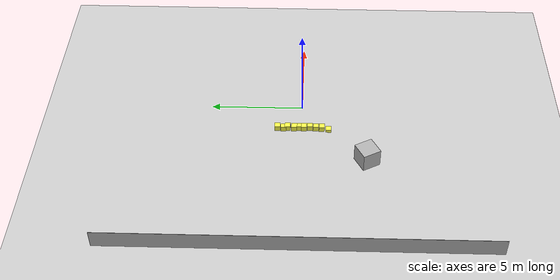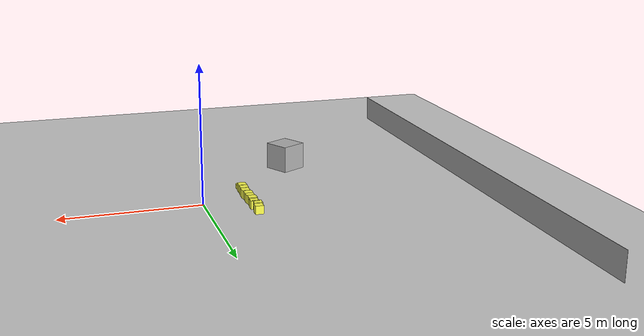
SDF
<sdf version="1.10">
 <world name="default">
  <model name="ground_plane">
   <static>true</static>
   <link name="link">
    <collision name="collision">
     <geometry><plane><normal>0 0 1</normal><size>1 1</size></plane></geometry>
    </collision>
    <visual name="visual">
     <geometry><plane><normal>0 0 1</normal><size>100 100</size></plane></geometry>
     <material>
      <ambient>0.800000012 0.800000012 0.800000012 1</ambient>
      <diffuse>0.800000012 0.800000012 0.800000012 1</diffuse>
      <specular>0.800000012 0.800000012 0.800000012 1</specular>
     </material>
    </visual>
    <inertial>
     <mass>1</mass>
     <inertia><ixx>1</ixx><ixy>0</ixy><ixz>0</ixz><iyy>1</iyy><iyz>0</iyz><izz>1</izz></inertia>
    </inertial>
   </link>
  </model>
  <model name="wall_1">
   <pose>-10 0 .5 0 0 -1.57</pose>
   <static>true</static>
   <link name="link">
    <collision name="collision"><geometry><box><size>20 .01 1</size></box></geometry></collision>
    <visual name="visual">
     <geometry><box><size>20 .01 1</size></box></geometry>
     <material>
      <ambient>0.7 0.7 0.7 1</ambient>
      <diffuse>0.7 0.7 0.7 1</diffuse>
      <specular>0.7 0.7 0.7 1</specular>
     </material>
    </visual>
    <inertial>
     <mass>1</mass>
     <inertia><ixx>1</ixx><ixy>0</ixy><ixz>0</ixz><iyy>1</iyy><iyz>0</iyz><izz>1</izz></inertia>
    </inertial>
   </link>
  </model>
  <model name="cube_1">
   <pose>-4 -3.5 .5 0 0 .5</pose>
   <static>true</static>
   <link name="link">
    <collision name="collision"><geometry><box><size>1 1 1</size></box></geometry></collision>
    <visual name="visual">
     <geometry><box><size>1 1 1</size></box></geometry>
     <material>
      <ambient>0.7 0.7 0.7 1</ambient>
      <diffuse>0.7 0.7 0.7 1</diffuse>
      <specular>0.7 0.7 0.7 1</specular>
     </material>
    </visual>
    <inertial>
     <mass>1</mass>
     <inertia><ixx>1</ixx><ixy>0</ixy><ixz>0</ixz><iyy>1</iyy><iyz>0</iyz><izz>1</izz></inertia>
    </inertial>
   </link>
  </model>
  <model name="Box_Yellow">
   <link name="link_0">
    <inertial>
     <mass>1</mass>
     <inertia>
      <ixx>0.166667</ixx>
      <ixy>0</ixy>
      <ixz>0</ixz>
      <iyy>0.166667</iyy>
      <iyz>0</iyz>
      <izz>0.166667</izz>
     </inertia>
    </inertial>
    <visual name="visual">
     <geometry><box><size>0.3 0.3 0.3</size></box></geometry>
     <material>
      <lighting>1</lighting>
      <script><uri>file://media/materials/scripts/gazebo.material</uri><name>Gazebo/Grey</name></script>
      <ambient>1 1 0.3 1</ambient>
      <diffuse>0.7 0.7 0.7 1</diffuse>
      <specular>0.01 0.01 0.01 1</specular>
      <emissive>0 0 0 1</emissive>
      <shader type="vertex"><normal_map>__default__</normal_map></shader>
     </material>
    </visual>
    <collision name="collision">
     <geometry><box><size>0.3 0.3 0.3</size></box></geometry>
     <surface>
      <friction>
       <ode><mu>1</mu><mu2>1</mu2><fdir1>0 0 0</fdir1><slip1>0</slip1><slip2>0</slip2></ode>
       <torsional>
        <coefficient>1</coefficient>
        <patch_radius>0</patch_radius>
        <surface_radius>0</surface_radius>
        <use_patch_radius>1</use_patch_radius>
        <ode><slip>0</slip></ode>
       </torsional>
      </friction>
      <bounce><restitution_coefficient>0</restitution_coefficient><threshold>1e+06</threshold></bounce>
      <contact>
       <collide_without_contact>0</collide_without_contact>
       <collide_without_contact_bitmask>1</collide_without_contact_bitmask>
       <collide_bitmask>1</collide_bitmask>
       <ode>
        <soft_cfm>0</soft_cfm>
        <soft_erp>0.2</soft_erp>
        <kp>1e+13</kp>
        <kd>1</kd>
        <max_vel>0.01</max_vel>
        <min_depth>0</min_depth>
       </ode>
       <bullet>
        <split_impulse>1</split_impulse>
        <split_impulse_penetration_threshold>-0.01</split_impulse_penetration_threshold>
        <soft_cfm>0</soft_cfm>
        <soft_erp>0.2</soft_erp>
        <kp>1e+13</kp>
        <kd>1</kd>
       </bullet>
      </contact>
     </surface>
    </collision>
   </link>
   <static>0</static>
   <pose>-1.69644 -1.47229 0 0 -0 0</pose>
  </model>
  <model name="Box_Yellow_clone">
   <link name="link_0">
    <inertial>
     <mass>1</mass>
     <inertia>
      <ixx>0.166667</ixx>
      <ixy>0</ixy>
      <ixz>0</ixz>
      <iyy>0.166667</iyy>
      <iyz>0</iyz>
      <izz>0.166667</izz>
     </inertia>
    </inertial>
    <visual name="visual">
     <geometry><box><size>0.3 0.3 0.3</size></box></geometry>
     <material>
      <lighting>1</lighting>
      <script><uri>file://media/materials/scripts/gazebo.material</uri><name>Gazebo/Grey</name></script>
      <ambient>1 1 0.3 1</ambient>
      <diffuse>0.7 0.7 0.7 1</diffuse>
      <specular>0.01 0.01 0.01 1</specular>
      <emissive>0 0 0 1</emissive>
      <shader type="vertex"><normal_map>__default__</normal_map></shader>
     </material>
    </visual>
    <collision name="collision">
     <geometry><box><size>0.3 0.3 0.3</size></box></geometry>
     <surface>
      <friction>
       <ode><mu>1</mu><mu2>1</mu2><fdir1>0 0 0</fdir1><slip1>0</slip1><slip2>0</slip2></ode>
       <torsional>
        <coefficient>1</coefficient>
        <patch_radius>0</patch_radius>
        <surface_radius>0</surface_radius>
        <use_patch_radius>1</use_patch_radius>
        <ode><slip>0</slip></ode>
       </torsional>
      </friction>
      <bounce><restitution_coefficient>0</restitution_coefficient><threshold>1e+06</threshold></bounce>
      <contact>
       <collide_without_contact>0</collide_without_contact>
       <collide_without_contact_bitmask>1</collide_without_contact_bitmask>
       <collide_bitmask>1</collide_bitmask>
       <ode>
        <soft_cfm>0</soft_cfm>
        <soft_erp>0.2</soft_erp>
        <kp>1e+13</kp>
        <kd>1</kd>
        <max_vel>0.01</max_vel>
        <min_depth>0</min_depth>
       </ode>
       <bullet>
        <split_impulse>1</split_impulse>
        <split_impulse_penetration_threshold>-0.01</split_impulse_penetration_threshold>
        <soft_cfm>0</soft_cfm>
        <soft_erp>0.2</soft_erp>
        <kp>1e+13</kp>
        <kd>1</kd>
       </bullet>
      </contact>
     </surface>
    </collision>
   </link>
   <static>0</static>
   <pose>-1.66017 -1.09947 0.15 0 0 -1e-06</pose>
  </model>
  <model name="Box_Yellow_clone_0">
   <link name="link_0">
    <inertial>
     <mass>1</mass>
     <inertia>
      <ixx>0.166667</ixx>
      <ixy>0</ixy>
      <ixz>0</ixz>
      <iyy>0.166667</iyy>
      <iyz>0</iyz>
      <izz>0.166667</izz>
     </inertia>
    </inertial>
    <visual name="visual">
     <geometry><box><size>0.3 0.3 0.3</size></box></geometry>
     <material>
      <lighting>1</lighting>
      <script><uri>file://media/materials/scripts/gazebo.material</uri><name>Gazebo/Grey</name></script>
      <ambient>1 1 0.3 1</ambient>
      <diffuse>0.7 0.7 0.7 1</diffuse>
      <specular>0.01 0.01 0.01 1</specular>
      <emissive>0 0 0 1</emissive>
      <shader type="vertex"><normal_map>__default__</normal_map></shader>
     </material>
    </visual>
    <collision name="collision">
     <geometry><box><size>0.3 0.3 0.3</size></box></geometry>
     <surface>
      <friction>
       <ode><mu>1</mu><mu2>1</mu2><fdir1>0 0 0</fdir1><slip1>0</slip1><slip2>0</slip2></ode>
       <torsional>
        <coefficient>1</coefficient>
        <patch_radius>0</patch_radius>
        <surface_radius>0</surface_radius>
        <use_patch_radius>1</use_patch_radius>
        <ode><slip>0</slip></ode>
       </torsional>
      </friction>
      <bounce><restitution_coefficient>0</restitution_coefficient><threshold>1e+06</threshold></bounce>
      <contact>
       <collide_without_contact>0</collide_without_contact>
       <collide_without_contact_bitmask>1</collide_without_contact_bitmask>
       <collide_bitmask>1</collide_bitmask>
       <ode>
        <soft_cfm>0</soft_cfm>
        <soft_erp>0.2</soft_erp>
        <kp>1e+13</kp>
        <kd>1</kd>
        <max_vel>0.01</max_vel>
        <min_depth>0</min_depth>
       </ode>
       <bullet>
        <split_impulse>1</split_impulse>
        <split_impulse_penetration_threshold>-0.01</split_impulse_penetration_threshold>
        <soft_cfm>0</soft_cfm>
        <soft_erp>0.2</soft_erp>
        <kp>1e+13</kp>
        <kd>1</kd>
       </bullet>
      </contact>
     </surface>
    </collision>
   </link>
   <static>0</static>
   <pose>-1.64792 -0.772988 0.15 0 0 -1e-06</pose>
  </model>
  <model name="Box_Yellow_clone_1">
   <link name="link_0">
    <inertial>
     <mass>1</mass>
     <inertia>
      <ixx>0.166667</ixx>
      <ixy>0</ixy>
      <ixz>0</ixz>
      <iyy>0.166667</iyy>
      <iyz>0</iyz>
      <izz>0.166667</izz>
     </inertia>
    </inertial>
    <visual name="visual">
     <geometry><box><size>0.3 0.3 0.3</size></box></geometry>
     <material>
      <lighting>1</lighting>
      <script><uri>file://media/materials/scripts/gazebo.material</uri><name>Gazebo/Grey</name></script>
      <ambient>1 1 0.3 1</ambient>
      <diffuse>0.7 0.7 0.7 1</diffuse>
      <specular>0.01 0.01 0.01 1</specular>
      <emissive>0 0 0 1</emissive>
      <shader type="vertex"><normal_map>__default__</normal_map></shader>
     </material>
    </visual>
    <collision name="collision">
     <geometry><box><size>0.3 0.3 0.3</size></box></geometry>
     <surface>
      <friction>
       <ode><mu>1</mu><mu2>1</mu2><fdir1>0 0 0</fdir1><slip1>0</slip1><slip2>0</slip2></ode>
       <torsional>
        <coefficient>1</coefficient>
        <patch_radius>0</patch_radius>
        <surface_radius>0</surface_radius>
        <use_patch_radius>1</use_patch_radius>
        <ode><slip>0</slip></ode>
       </torsional>
      </friction>
      <bounce><restitution_coefficient>0</restitution_coefficient><threshold>1e+06</threshold></bounce>
      <contact>
       <collide_without_contact>0</collide_without_contact>
       <collide_without_contact_bitmask>1</collide_without_contact_bitmask>
       <collide_bitmask>1</collide_bitmask>
       <ode>
        <soft_cfm>0</soft_cfm>
        <soft_erp>0.2</soft_erp>
        <kp>1e+13</kp>
        <kd>1</kd>
        <max_vel>0.01</max_vel>
        <min_depth>0</min_depth>
       </ode>
       <bullet>
        <split_impulse>1</split_impulse>
        <split_impulse_penetration_threshold>-0.01</split_impulse_penetration_threshold>
        <soft_cfm>0</soft_cfm>
        <soft_erp>0.2</soft_erp>
        <kp>1e+13</kp>
        <kd>1</kd>
       </bullet>
      </contact>
     </surface>
    </collision>
   </link>
   <static>0</static>
   <pose>-1.62011 -0.460472 0.15 0 0 -1e-06</pose>
  </model>
  <model name="Box_Yellow_clone_2">
   <link name="link_0">
    <inertial>
     <mass>1</mass>
     <inertia>
      <ixx>0.166667</ixx>
      <ixy>0</ixy>
      <ixz>0</ixz>
      <iyy>0.166667</iyy>
      <iyz>0</iyz>
      <izz>0.166667</izz>
     </inertia>
    </inertial>
    <visual name="visual">
     <geometry><box><size>0.3 0.3 0.3</size></box></geometry>
     <material>
      <lighting>1</lighting>
      <script><uri>file://media/materials/scripts/gazebo.material</uri><name>Gazebo/Grey</name></script>
      <ambient>1 1 0.3 1</ambient>
      <diffuse>0.7 0.7 0.7 1</diffuse>
      <specular>0.01 0.01 0.01 1</specular>
      <emissive>0 0 0 1</emissive>
      <shader type="vertex"><normal_map>__default__</normal_map></shader>
     </material>
    </visual>
    <collision name="collision">
     <geometry><box><size>0.3 0.3 0.3</size></box></geometry>
     <surface>
      <friction>
       <ode><mu>1</mu><mu2>1</mu2><fdir1>0 0 0</fdir1><slip1>0</slip1><slip2>0</slip2></ode>
       <torsional>
        <coefficient>1</coefficient>
        <patch_radius>0</patch_radius>
        <surface_radius>0</surface_radius>
        <use_patch_radius>1</use_patch_radius>
        <ode><slip>0</slip></ode>
       </torsional>
      </friction>
      <bounce><restitution_coefficient>0</restitution_coefficient><threshold>1e+06</threshold></bounce>
      <contact>
       <collide_without_contact>0</collide_without_contact>
       <collide_without_contact_bitmask>1</collide_without_contact_bitmask>
       <collide_bitmask>1</collide_bitmask>
       <ode>
        <soft_cfm>0</soft_cfm>
        <soft_erp>0.2</soft_erp>
        <kp>1e+13</kp>
        <kd>1</kd>
        <max_vel>0.01</max_vel>
        <min_depth>0</min_depth>
       </ode>
       <bullet>
        <split_impulse>1</split_impulse>
        <split_impulse_penetration_threshold>-0.01</split_impulse_penetration_threshold>
        <soft_cfm>0</soft_cfm>
        <soft_erp>0.2</soft_erp>
        <kp>1e+13</kp>
        <kd>1</kd>
       </bullet>
      </contact>
     </surface>
    </collision>
   </link>
   <static>0</static>
   <pose>-1.64972 -0.13964 0.15 0 0 -1e-06</pose>
  </model>
  <model name="Box_Yellow_clone_3">
   <link name="link_0">
    <inertial>
     <mass>1</mass>
     <inertia>
      <ixx>0.166667</ixx>
      <ixy>0</ixy>
      <ixz>0</ixz>
      <iyy>0.166667</iyy>
      <iyz>0</iyz>
      <izz>0.166667</izz>
     </inertia>
    </inertial>
    <visual name="visual">
     <geometry><box><size>0.3 0.3 0.3</size></box></geometry>
     <material>
      <lighting>1</lighting>
      <script><uri>file://media/materials/scripts/gazebo.material</uri><name>Gazebo/Grey</name></script>
      <ambient>1 1 0.3 1</ambient>
      <diffuse>0.7 0.7 0.7 1</diffuse>
      <specular>0.01 0.01 0.01 1</specular>
      <emissive>0 0 0 1</emissive>
      <shader type="vertex"><normal_map>__default__</normal_map></shader>
     </material>
    </visual>
    <collision name="collision">
     <geometry><box><size>0.3 0.3 0.3</size></box></geometry>
     <surface>
      <friction>
       <ode><mu>1</mu><mu2>1</mu2><fdir1>0 0 0</fdir1><slip1>0</slip1><slip2>0</slip2></ode>
       <torsional>
        <coefficient>1</coefficient>
        <patch_radius>0</patch_radius>
        <surface_radius>0</surface_radius>
        <use_patch_radius>1</use_patch_radius>
        <ode><slip>0</slip></ode>
       </torsional>
      </friction>
      <bounce><restitution_coefficient>0</restitution_coefficient><threshold>1e+06</threshold></bounce>
      <contact>
       <collide_without_contact>0</collide_without_contact>
       <collide_without_contact_bitmask>1</collide_without_contact_bitmask>
       <collide_bitmask>1</collide_bitmask>
       <ode>
        <soft_cfm>0</soft_cfm>
        <soft_erp>0.2</soft_erp>
        <kp>1e+13</kp>
        <kd>1</kd>
        <max_vel>0.01</max_vel>
        <min_depth>0</min_depth>
       </ode>
       <bullet>
        <split_impulse>1</split_impulse>
        <split_impulse_penetration_threshold>-0.01</split_impulse_penetration_threshold>
        <soft_cfm>0</soft_cfm>
        <soft_erp>0.2</soft_erp>
        <kp>1e+13</kp>
        <kd>1</kd>
       </bullet>
      </contact>
     </surface>
    </collision>
   </link>
   <static>0</static>
   <pose>-1.63756 0.145804 0.15 0 0 -1e-06</pose>
  </model>
  <model name="Box_Yellow_clone_4">
   <link name="link_0">
    <inertial>
     <mass>1</mass>
     <inertia>
      <ixx>0.166667</ixx>
      <ixy>0</ixy>
      <ixz>0</ixz>
      <iyy>0.166667</iyy>
      <iyz>0</iyz>
      <izz>0.166667</izz>
     </inertia>
    </inertial>
    <visual name="visual">
     <geometry><box><size>0.3 0.3 0.3</size></box></geometry>
     <material>
      <lighting>1</lighting>
      <script><uri>file://media/materials/scripts/gazebo.material</uri><name>Gazebo/Grey</name></script>
      <ambient>1 1 0.3 1</ambient>
      <diffuse>0.7 0.7 0.7 1</diffuse>
      <specular>0.01 0.01 0.01 1</specular>
      <emissive>0 0 0 1</emissive>
      <shader type="vertex"><normal_map>__default__</normal_map></shader>
     </material>
    </visual>
    <collision name="collision">
     <geometry><box><size>0.3 0.3 0.3</size></box></geometry>
     <surface>
      <friction>
       <ode><mu>1</mu><mu2>1</mu2><fdir1>0 0 0</fdir1><slip1>0</slip1><slip2>0</slip2></ode>
       <torsional>
        <coefficient>1</coefficient>
        <patch_radius>0</patch_radius>
        <surface_radius>0</surface_radius>
        <use_patch_radius>1</use_patch_radius>
        <ode><slip>0</slip></ode>
       </torsional>
      </friction>
      <bounce><restitution_coefficient>0</restitution_coefficient><threshold>1e+06</threshold></bounce>
      <contact>
       <collide_without_contact>0</collide_without_contact>
       <collide_without_contact_bitmask>1</collide_without_contact_bitmask>
       <collide_bitmask>1</collide_bitmask>
       <ode>
        <soft_cfm>0</soft_cfm>
        <soft_erp>0.2</soft_erp>
        <kp>1e+13</kp>
        <kd>1</kd>
        <max_vel>0.01</max_vel>
        <min_depth>0</min_depth>
       </ode>
       <bullet>
        <split_impulse>1</split_impulse>
        <split_impulse_penetration_threshold>-0.01</split_impulse_penetration_threshold>
        <soft_cfm>0</soft_cfm>
        <soft_erp>0.2</soft_erp>
        <kp>1e+13</kp>
        <kd>1</kd>
       </bullet>
      </contact>
     </surface>
    </collision>
   </link>
   <static>0</static>
   <pose>-1.66444 0.401258 0.15 0 0 -1e-06</pose>
  </model>
  <model name="Box_Yellow_clone_5">
   <link name="link_0">
    <inertial>
     <mass>1</mass>
     <inertia>
      <ixx>0.166667</ixx>
      <ixy>0</ixy>
      <ixz>0</ixz>
      <iyy>0.166667</iyy>
      <iyz>0</iyz>
      <izz>0.166667</izz>
     </inertia>
    </inertial>
    <visual name="visual">
     <geometry><box><size>0.3 0.3 0.3</size></box></geometry>
     <material>
      <lighting>1</lighting>
      <script><uri>file://media/materials/scripts/gazebo.material</uri><name>Gazebo/Grey</name></script>
      <ambient>1 1 0.3 1</ambient>
      <diffuse>0.7 0.7 0.7 1</diffuse>
      <specular>0.01 0.01 0.01 1</specular>
      <emissive>0 0 0 1</emissive>
      <shader type="vertex"><normal_map>__default__</normal_map></shader>
     </material>
    </visual>
    <collision name="collision">
     <geometry><box><size>0.3 0.3 0.3</size></box></geometry>
     <surface>
      <friction>
       <ode><mu>1</mu><mu2>1</mu2><fdir1>0 0 0</fdir1><slip1>0</slip1><slip2>0</slip2></ode>
       <torsional>
        <coefficient>1</coefficient>
        <patch_radius>0</patch_radius>
        <surface_radius>0</surface_radius>
        <use_patch_radius>1</use_patch_radius>
        <ode><slip>0</slip></ode>
       </torsional>
      </friction>
      <bounce><restitution_coefficient>0</restitution_coefficient><threshold>1e+06</threshold></bounce>
      <contact>
       <collide_without_contact>0</collide_without_contact>
       <collide_without_contact_bitmask>1</collide_without_contact_bitmask>
       <collide_bitmask>1</collide_bitmask>
       <ode>
        <soft_cfm>0</soft_cfm>
        <soft_erp>0.2</soft_erp>
        <kp>1e+13</kp>
        <kd>1</kd>
        <max_vel>0.01</max_vel>
        <min_depth>0</min_depth>
       </ode>
       <bullet>
        <split_impulse>1</split_impulse>
        <split_impulse_penetration_threshold>-0.01</split_impulse_penetration_threshold>
        <soft_cfm>0</soft_cfm>
        <soft_erp>0.2</soft_erp>
        <kp>1e+13</kp>
        <kd>1</kd>
       </bullet>
      </contact>
     </surface>
    </collision>
   </link>
   <static>0</static>
   <pose>-1.63572 0.760518 0.15 0 0 -1e-06</pose>
  </model>
  <model name="Box_Yellow_clone_6">
   <link name="link_0">
    <inertial>
     <mass>1</mass>
     <inertia>
      <ixx>0.166667</ixx>
      <ixy>0</ixy>
      <ixz>0</ixz>
      <iyy>0.166667</iyy>
      <iyz>0</iyz>
      <izz>0.166667</izz>
     </inertia>
    </inertial>
    <visual name="visual">
     <geometry><box><size>0.3 0.3 0.3</size></box></geometry>
     <material>
      <lighting>1</lighting>
      <script><uri>file://media/materials/scripts/gazebo.material</uri><name>Gazebo/Grey</name></script>
      <ambient>1 1 0.3 1</ambient>
      <diffuse>0.7 0.7 0.7 1</diffuse>
      <specular>0.01 0.01 0.01 1</specular>
      <emissive>0 0 0 1</emissive>
      <shader type="vertex"><normal_map>__default__</normal_map></shader>
     </material>
    </visual>
    <collision name="collision">
     <geometry><box><size>0.3 0.3 0.3</size></box></geometry>
     <surface>
      <friction>
       <ode><mu>1</mu><mu2>1</mu2><fdir1>0 0 0</fdir1><slip1>0</slip1><slip2>0</slip2></ode>
       <torsional>
        <coefficient>1</coefficient>
        <patch_radius>0</patch_radius>
        <surface_radius>0</surface_radius>
        <use_patch_radius>1</use_patch_radius>
        <ode><slip>0</slip></ode>
       </torsional>
      </friction>
      <bounce><restitution_coefficient>0</restitution_coefficient><threshold>1e+06</threshold></bounce>
      <contact>
       <collide_without_contact>0</collide_without_contact>
       <collide_without_contact_bitmask>1</collide_without_contact_bitmask>
       <collide_bitmask>1</collide_bitmask>
       <ode>
        <soft_cfm>0</soft_cfm>
        <soft_erp>0.2</soft_erp>
        <kp>1e+13</kp>
        <kd>1</kd>
        <max_vel>0.01</max_vel>
        <min_depth>0</min_depth>
       </ode>
       <bullet>
        <split_impulse>1</split_impulse>
        <split_impulse_penetration_threshold>-0.01</split_impulse_penetration_threshold>
        <soft_cfm>0</soft_cfm>
        <soft_erp>0.2</soft_erp>
        <kp>1e+13</kp>
        <kd>1</kd>
       </bullet>
      </contact>
     </surface>
    </collision>
   </link>
   <static>0</static>
   <pose>-1.70216 0.976952 0.15 0 0 -1e-06</pose>
  </model>
  <model name="Box_Yellow_clone_7">
   <link name="link_0">
    <inertial>
     <mass>1</mass>
     <inertia>
      <ixx>0.166667</ixx>
      <ixy>0</ixy>
      <ixz>0</ixz>
      <iyy>0.166667</iyy>
      <iyz>0</iyz>
      <izz>0.166667</izz>
     </inertia>
    </inertial>
    <visual name="visual">
     <geometry><box><size>0.3 0.3 0.3</size></box></geometry>
     <material>
      <lighting>1</lighting>
      <script><uri>file://media/materials/scripts/gazebo.material</uri><name>Gazebo/Grey</name></script>
      <ambient>1 1 0.3 1</ambient>
      <diffuse>0.7 0.7 0.7 1</diffuse>
      <specular>0.01 0.01 0.01 1</specular>
      <emissive>0 0 0 1</emissive>
      <shader type="vertex"><normal_map>__default__</normal_map></shader>
     </material>
    </visual>
    <collision name="collision">
     <geometry><box><size>0.3 0.3 0.3</size></box></geometry>
     <surface>
      <friction>
       <ode><mu>1</mu><mu2>1</mu2><fdir1>0 0 0</fdir1><slip1>0</slip1><slip2>0</slip2></ode>
       <torsional>
        <coefficient>1</coefficient>
        <patch_radius>0</patch_radius>
        <surface_radius>0</surface_radius>
        <use_patch_radius>1</use_patch_radius>
        <ode><slip>0</slip></ode>
       </torsional>
      </friction>
      <bounce><restitution_coefficient>0</restitution_coefficient><threshold>1e+06</threshold></bounce>
      <contact>
       <collide_without_contact>0</collide_without_contact>
       <collide_without_contact_bitmask>1</collide_without_contact_bitmask>
       <collide_bitmask>1</collide_bitmask>
       <ode>
        <soft_cfm>0</soft_cfm>
        <soft_erp>0.2</soft_erp>
        <kp>1e+13</kp>
        <kd>1</kd>
        <max_vel>0.01</max_vel>
        <min_depth>0</min_depth>
       </ode>
       <bullet>
        <split_impulse>1</split_impulse>
        <split_impulse_penetration_threshold>-0.01</split_impulse_penetration_threshold>
        <soft_cfm>0</soft_cfm>
        <soft_erp>0.2</soft_erp>
        <kp>1e+13</kp>
        <kd>1</kd>
       </bullet>
      </contact>
     </surface>
    </collision>
   </link>
   <static>0</static>
   <pose>-1.6538 1.30992 0.15 0 0 -1e-06</pose>
  </model>
 </world>
</sdf>
